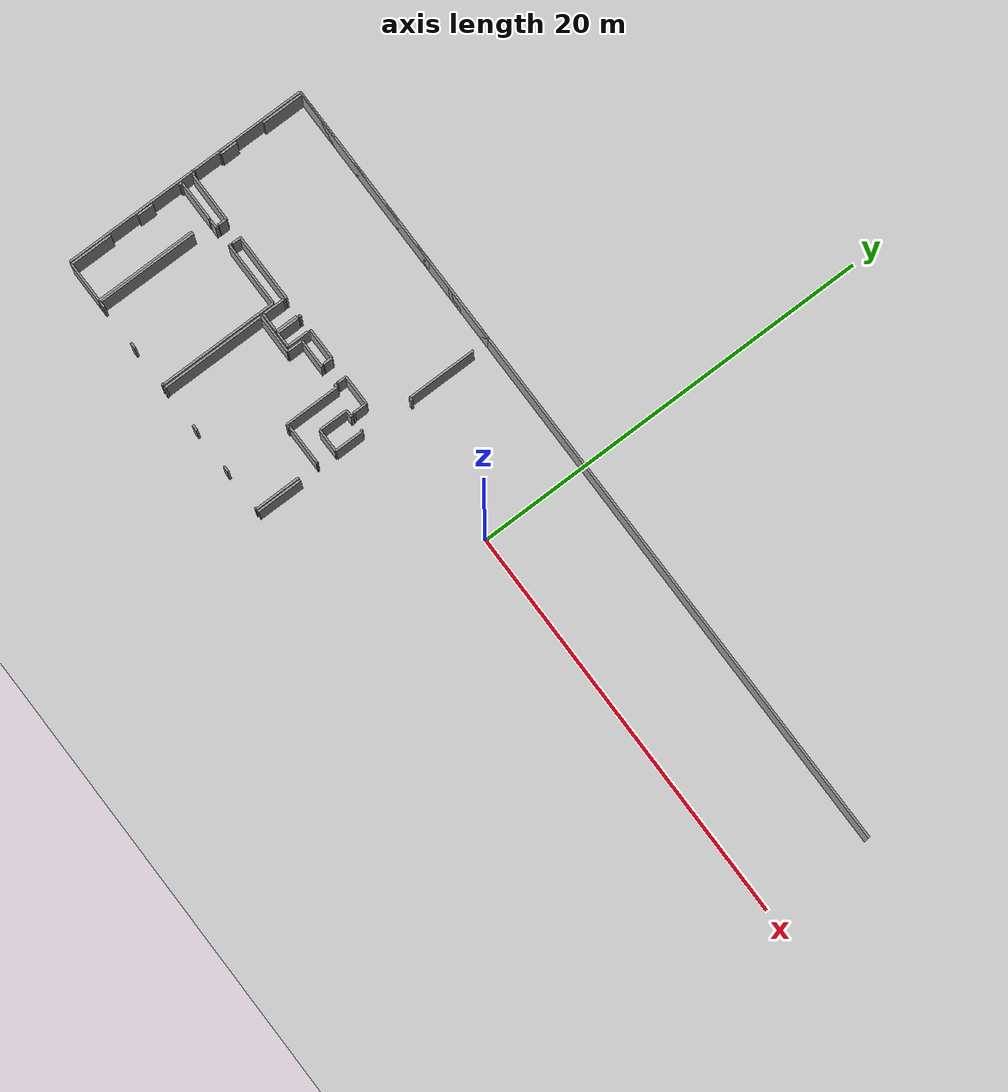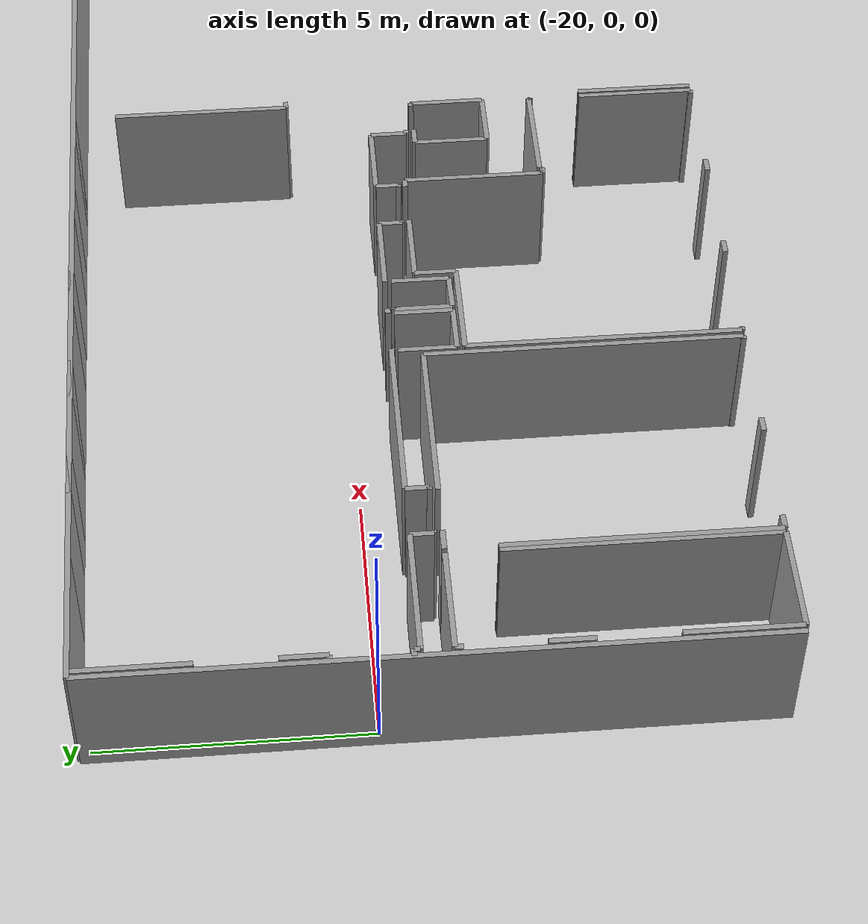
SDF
<sdf version="1.6">
 <world name="default">
  <model name="ground_plane">
   <static>1</static>
   <link name="link">
    <collision name="collision">
     <geometry><plane><normal>0 0 1</normal><size>100 100</size></plane></geometry>
     <surface><friction><ode><mu>100</mu><mu2>50</mu2></ode></friction></surface>
    </collision>
    <visual name="visual">
     <cast_shadows>0</cast_shadows>
     <geometry><plane><normal>0 0 1</normal><size>100 100</size></plane></geometry>
     <material>
      <script><uri>file://media/materials/scripts/gazebo.material</uri><name>Gazebo/Grey</name></script>
     </material>
    </visual>
   </link>
  </model>
  <model name="0510025536_Layout1_PLAN4">
   <static>1</static>
   <link name="Wall_0">
    <collision name="Wall_0_Collision">
     <geometry><box><size>2.08886657941 0.1 2.5</size></box></geometry>
     <pose>1.0444332897 0 1.25 0 0 0</pose>
    </collision>
    <visual name="Wall_0_Visual">
     <pose>1.0444332897 0 1.25 0 0 0</pose>
     <geometry><box><size>2.08886657941 0.1 2.5</size></box></geometry>
     <material>
      <script><uri>file://media/materials/scripts/gazebo.material</uri><name>Gazebo/Grey</name></script>
      <ambient>1 1 1 1</ambient>
     </material>
    </visual>
    <pose>0.12618978028 -12.3596154579 0 0 0 1.57079632679</pose>
   </link>
   <link name="Wall_1">
    <collision name="Wall_1_Collision">
     <geometry><box><size>0.816294112414 0.1 2.5</size></box></geometry>
     <pose>0.408147056207 0 1.25 0 0 0</pose>
    </collision>
    <visual name="Wall_1_Visual">
     <pose>0.408147056207 0 1.25 0 0 0</pose>
     <geometry><box><size>0.816294112414 0.1 2.5</size></box></geometry>
     <material>
      <script><uri>file://media/materials/scripts/gazebo.material</uri><name>Gazebo/Grey</name></script>
      <ambient>1 1 1 1</ambient>
     </material>
    </visual>
    <pose>0.12618978028 -8.83030460917 0 0 0 1.57079632679</pose>
   </link>
   <link name="Wall_2">
    <collision name="Wall_2_Collision">
     <geometry><box><size>0.14887344169 0.1 2.5</size></box></geometry>
     <pose>0.0744367208448 0 1.25 0 0 0</pose>
    </collision>
    <visual name="Wall_2_Visual">
     <pose>0.0744367208448 0 1.25 0 0 0</pose>
     <geometry><box><size>0.14887344169 0.1 2.5</size></box></geometry>
     <material>
      <script><uri>file://media/materials/scripts/gazebo.material</uri><name>Gazebo/Grey</name></script>
      <ambient>1 1 1 1</ambient>
     </material>
    </visual>
    <pose>0.12618978028 -6.59396246076 0 0 0 1.57079632679</pose>
   </link>
   <link name="Wall_3">
    <collision name="Wall_3_Collision">
     <geometry><box><size>1.98275533416 0.1 2.5</size></box></geometry>
     <pose>0.991377667078 0 1.25 0 0 0</pose>
    </collision>
    <visual name="Wall_3_Visual">
     <pose>0.991377667078 0 1.25 0 0 0</pose>
     <geometry><box><size>1.98275533416 0.1 2.5</size></box></geometry>
     <material>
      <script><uri>file://media/materials/scripts/gazebo.material</uri><name>Gazebo/Grey</name></script>
      <ambient>1 1 1 1</ambient>
     </material>
    </visual>
    <pose>0.12618978028 -6.44508901907 0 0 0 0.0</pose>
   </link>
   <link name="Wall_4">
    <collision name="Wall_4_Collision">
     <geometry><box><size>4.96575211905 0.1 2.5</size></box></geometry>
     <pose>2.48287605952 0 1.25 0 0 0</pose>
    </collision>
    <visual name="Wall_4_Visual">
     <pose>2.48287605952 0 1.25 0 0 0</pose>
     <geometry><box><size>4.96575211905 0.1 2.5</size></box></geometry>
     <material>
      <script><uri>file://media/materials/scripts/gazebo.material</uri><name>Gazebo/Grey</name></script>
      <ambient>1 1 1 1</ambient>
     </material>
    </visual>
    <pose>2.10894511443 -7.39113113317 0 0 0 -1.57079632679</pose>
   </link>
   <link name="Wall_5">
    <collision name="Wall_5_Collision">
     <geometry><box><size>1.98275721662 0.1 2.5</size></box></geometry>
     <pose>0.991378608311 0 1.25 0 0 0</pose>
    </collision>
    <visual name="Wall_5_Visual">
     <pose>0.991378608311 0 1.25 0 0 0</pose>
     <geometry><box><size>1.98275721662 0.1 2.5</size></box></geometry>
     <material>
      <script><uri>file://media/materials/scripts/gazebo.material</uri><name>Gazebo/Grey</name></script>
      <ambient>1 1 1 1</ambient>
     </material>
    </visual>
    <pose>2.10894511443 -12.3568832522 0 0 0 -3.14021467016</pose>
   </link>
   <link name="Wall_6">
    <collision name="Wall_6_Collision">
     <geometry><box><size>0.240052865004 0.1 2.5</size></box></geometry>
     <pose>0.120026432502 0 1.25 0 0 0</pose>
    </collision>
    <visual name="Wall_6_Visual">
     <pose>0.120026432502 0 1.25 0 0 0</pose>
     <geometry><box><size>0.240052865004 0.1 2.5</size></box></geometry>
     <material>
      <script><uri>file://media/materials/scripts/gazebo.material</uri><name>Gazebo/Grey</name></script>
      <ambient>1 1 1 1</ambient>
     </material>
    </visual>
    <pose>2.23449949804 -12.3572644902 0 0 0 0.0</pose>
   </link>
   <link name="Wall_7">
    <collision name="Wall_7_Collision">
     <geometry><box><size>0.289041948889 0.1 2.5</size></box></geometry>
     <pose>0.144520974444 0 1.25 0 0 0</pose>
    </collision>
    <visual name="Wall_7_Visual">
     <pose>0.144520974444 0 1.25 0 0 0</pose>
     <geometry><box><size>0.289041948889 0.1 2.5</size></box></geometry>
     <material>
      <script><uri>file://media/materials/scripts/gazebo.material</uri><name>Gazebo/Grey</name></script>
      <ambient>1 1 1 1</ambient>
     </material>
    </visual>
    <pose>4.41384656441 -12.3572644902 0 0 0 0.0</pose>
   </link>
   <link name="Wall_8">
    <collision name="Wall_8_Collision">
     <geometry><box><size>0.0716727452949 0.1 2.5</size></box></geometry>
     <pose>0.0358363726474 0 1.25 0 0 0</pose>
    </collision>
    <visual name="Wall_8_Visual">
     <pose>0.0358363726474 0 1.25 0 0 0</pose>
     <geometry><box><size>0.0716727452949 0.1 2.5</size></box></geometry>
     <material>
      <script><uri>file://media/materials/scripts/gazebo.material</uri><name>Gazebo/Grey</name></script>
      <ambient>1 1 1 1</ambient>
     </material>
    </visual>
    <pose>6.63290592317 -12.3572644902 0 0 0 0.0</pose>
   </link>
   <link name="Wall_9">
    <collision name="Wall_9_Collision">
     <geometry><box><size>5.91211193148 0.1 2.5</size></box></geometry>
     <pose>2.95605596574 0 1.25 0 0 0</pose>
    </collision>
    <visual name="Wall_9_Visual">
     <pose>2.95605596574 0 1.25 0 0 0</pose>
     <geometry><box><size>5.91211193148 0.1 2.5</size></box></geometry>
     <material>
      <script><uri>file://media/materials/scripts/gazebo.material</uri><name>Gazebo/Grey</name></script>
      <ambient>1 1 1 1</ambient>
     </material>
    </visual>
    <pose>6.70457866846 -12.3572644902 0 0 0 1.57079632679</pose>
   </link>
   <link name="Wall_10">
    <collision name="Wall_10_Collision">
     <geometry><box><size>3.19356724403 0.1 2.5</size></box></geometry>
     <pose>1.59678362202 0 1.25 0 0 0</pose>
    </collision>
    <visual name="Wall_10_Visual">
     <pose>1.59678362202 0 1.25 0 0 0</pose>
     <geometry><box><size>3.19356724403 0.1 2.5</size></box></geometry>
     <material>
      <script><uri>file://media/materials/scripts/gazebo.material</uri><name>Gazebo/Grey</name></script>
      <ambient>1 1 1 1</ambient>
     </material>
    </visual>
    <pose>6.70457866846 -6.44515255874 0 0 0 3.14159265359</pose>
   </link>
   <link name="Wall_11">
    <collision name="Wall_11_Collision">
     <geometry><box><size>0.405637239329 0.1 2.5</size></box></geometry>
     <pose>0.202818619664 0 1.25 0 0 0</pose>
    </collision>
    <visual name="Wall_11_Visual">
     <pose>0.202818619664 0 1.25 0 0 0</pose>
     <geometry><box><size>0.405637239329 0.1 2.5</size></box></geometry>
     <material>
      <script><uri>file://media/materials/scripts/gazebo.material</uri><name>Gazebo/Grey</name></script>
      <ambient>1 1 1 1</ambient>
     </material>
    </visual>
    <pose>2.60233063502 -6.44515255874 0 0 0 3.14159265359</pose>
   </link>
   <link name="Wall_12">
    <collision name="Wall_12_Collision">
     <geometry><box><size>4.97426643454 0.1 2.5</size></box></geometry>
     <pose>2.48713321727 0 1.25 0 0 0</pose>
    </collision>
    <visual name="Wall_12_Visual">
     <pose>2.48713321727 0 1.25 0 0 0</pose>
     <geometry><box><size>4.97426643454 0.1 2.5</size></box></geometry>
     <material>
      <script><uri>file://media/materials/scripts/gazebo.material</uri><name>Gazebo/Grey</name></script>
      <ambient>1 1 1 1</ambient>
     </material>
    </visual>
    <pose>2.19669339569 -7.38433238871 0 0 0 -1.57079632679</pose>
   </link>
   <link name="Wall_13">
    <collision name="Wall_13_Collision">
     <geometry><box><size>0.0378296420746 0.1 2.5</size></box></geometry>
     <pose>0.0189148210373 0 1.25 0 0 0</pose>
    </collision>
    <visual name="Wall_13_Visual">
     <pose>0.0189148210373 0 1.25 0 0 0</pose>
     <geometry><box><size>0.0378296420746 0.1 2.5</size></box></geometry>
     <material>
      <script><uri>file://media/materials/scripts/gazebo.material</uri><name>Gazebo/Grey</name></script>
      <ambient>1 1 1 1</ambient>
     </material>
    </visual>
    <pose>2.19669339569 -12.3585988232 0 0 0 0.0352794735935</pose>
   </link>
   <link name="Wall_14">
    <collision name="Wall_14_Collision">
     <geometry><box><size>1.09078547737 0.1 2.5</size></box></geometry>
     <pose>0.545392738687 0 1.25 0 0 0</pose>
    </collision>
    <visual name="Wall_14_Visual">
     <pose>0.545392738687 0 1.25 0 0 0</pose>
     <geometry><box><size>1.09078547737 0.1 2.5</size></box></geometry>
     <material>
      <script><uri>file://media/materials/scripts/gazebo.material</uri><name>Gazebo/Grey</name></script>
      <ambient>1 1 1 1</ambient>
     </material>
    </visual>
    <pose>6.84411177898 -7.07946906254 0 0 0 1.57079632679</pose>
   </link>
   <link name="Wall_15">
    <collision name="Wall_15_Collision">
     <geometry><box><size>0.0507046549161 0.1 2.5</size></box></geometry>
     <pose>0.025352327458 0 1.25 0 0 0</pose>
    </collision>
    <visual name="Wall_15_Visual">
     <pose>0.025352327458 0 1.25 0 0 0</pose>
     <geometry><box><size>0.0507046549161 0.1 2.5</size></box></geometry>
     <material>
      <script><uri>file://media/materials/scripts/gazebo.material</uri><name>Gazebo/Grey</name></script>
      <ambient>1 1 1 1</ambient>
     </material>
    </visual>
    <pose>6.84411177898 -5.98868358516 0 0 0 0.0</pose>
   </link>
   <link name="Wall_16">
    <collision name="Wall_16_Collision">
     <geometry><box><size>1.08868866834 0.1 2.5</size></box></geometry>
     <pose>0.544344334168 0 1.25 0 0 0</pose>
    </collision>
    <visual name="Wall_16_Visual">
     <pose>0.544344334168 0 1.25 0 0 0</pose>
     <geometry><box><size>1.08868866834 0.1 2.5</size></box></geometry>
     <material>
      <script><uri>file://media/materials/scripts/gazebo.material</uri><name>Gazebo/Grey</name></script>
      <ambient>1 1 1 1</ambient>
     </material>
    </visual>
    <pose>7.76912226303 -5.98868358516 0 0 0 -1.57079632679</pose>
   </link>
   <link name="Wall_17">
    <collision name="Wall_17_Collision">
     <geometry><box><size>0.92501286056 0.1 2.5</size></box></geometry>
     <pose>0.46250643028 0 1.25 0 0 0</pose>
    </collision>
    <visual name="Wall_17_Visual">
     <pose>0.46250643028 0 1.25 0 0 0</pose>
     <geometry><box><size>0.92501286056 0.1 2.5</size></box></geometry>
     <material>
      <script><uri>file://media/materials/scripts/gazebo.material</uri><name>Gazebo/Grey</name></script>
      <ambient>1 1 1 1</ambient>
     </material>
    </visual>
    <pose>7.76912226303 -7.0773722535 0 0 0 -3.13932586258</pose>
   </link>
   <link name="Wall_18">
    <collision name="Wall_18_Collision">
     <geometry><box><size>1.088752208 0.1 2.5</size></box></geometry>
     <pose>0.544376104002 0 1.25 0 0 0</pose>
    </collision>
    <visual name="Wall_18_Visual">
     <pose>0.544376104002 0 1.25 0 0 0</pose>
     <geometry><box><size>1.088752208 0.1 2.5</size></box></geometry>
     <material>
      <script><uri>file://media/materials/scripts/gazebo.material</uri><name>Gazebo/Grey</name></script>
      <ambient>1 1 1 1</ambient>
     </material>
    </visual>
    <pose>7.86894308117 -7.07997737988 0 0 0 1.57079632679</pose>
   </link>
   <link name="Wall_19">
    <collision name="Wall_19_Collision">
     <geometry><box><size>0.0371071660037 0.1 2.5</size></box></geometry>
     <pose>0.0185535830019 0 1.25 0 0 0</pose>
    </collision>
    <visual name="Wall_19_Visual">
     <pose>0.0185535830019 0 1.25 0 0 0</pose>
     <geometry><box><size>0.0371071660037 0.1 2.5</size></box></geometry>
     <material>
      <script><uri>file://media/materials/scripts/gazebo.material</uri><name>Gazebo/Grey</name></script>
      <ambient>1 1 1 1</ambient>
     </material>
    </visual>
    <pose>7.86894308117 -5.99122517187 0 0 0 0.0</pose>
   </link>
   <link name="Wall_20">
    <collision name="Wall_20_Collision">
     <geometry><box><size>1.07985665451 0.1 2.5</size></box></geometry>
     <pose>0.539928327255 0 1.25 0 0 0</pose>
    </collision>
    <visual name="Wall_20_Visual">
     <pose>0.539928327255 0 1.25 0 0 0</pose>
     <geometry><box><size>1.07985665451 0.1 2.5</size></box></geometry>
     <material>
      <script><uri>file://media/materials/scripts/gazebo.material</uri><name>Gazebo/Grey</name></script>
      <ambient>1 1 1 1</ambient>
     </material>
    </visual>
    <pose>8.59037246953 -5.99122517187 0 0 0 -1.57079632679</pose>
   </link>
   <link name="Wall_21">
    <collision name="Wall_21_Collision">
     <geometry><box><size>0.721484229399 0.1 2.5</size></box></geometry>
     <pose>0.3607421147 0 1.25 0 0 0</pose>
    </collision>
    <visual name="Wall_21_Visual">
     <pose>0.3607421147 0 1.25 0 0 0</pose>
     <geometry><box><size>0.721484229399 0.1 2.5</size></box></geometry>
     <material>
      <script><uri>file://media/materials/scripts/gazebo.material</uri><name>Gazebo/Grey</name></script>
      <ambient>1 1 1 1</ambient>
     </material>
    </visual>
    <pose>8.59037246953 -7.07108182638 0 0 0 -3.12926282221</pose>
   </link>
   <link name="Wall_22">
    <collision name="Wall_22_Collision">
     <geometry><box><size>5.14398088727 0.1 2.5</size></box></geometry>
     <pose>2.57199044363 0 1.25 0 0 0</pose>
    </collision>
    <visual name="Wall_22_Visual">
     <pose>2.57199044363 0 1.25 0 0 0</pose>
     <geometry><box><size>5.14398088727 0.1 2.5</size></box></geometry>
     <material>
      <script><uri>file://media/materials/scripts/gazebo.material</uri><name>Gazebo/Grey</name></script>
      <ambient>1 1 1 1</ambient>
     </material>
    </visual>
    <pose>6.85478644318 -12.3631101397 0 0 0 1.57079632679</pose>
   </link>
   <link name="Wall_23">
    <collision name="Wall_23_Collision">
     <geometry><box><size>1.91203568388 0.1 2.5</size></box></geometry>
     <pose>0.956017841939 0 1.25 0 0 0</pose>
    </collision>
    <visual name="Wall_23_Visual">
     <pose>0.956017841939 0 1.25 0 0 0</pose>
     <geometry><box><size>1.91203568388 0.1 2.5</size></box></geometry>
     <material>
      <script><uri>file://media/materials/scripts/gazebo.material</uri><name>Gazebo/Grey</name></script>
      <ambient>1 1 1 1</ambient>
     </material>
    </visual>
    <pose>6.85478644318 -7.21912925239 0 0 0 0.0</pose>
   </link>
   <link name="Wall_24">
    <collision name="Wall_24_Collision">
     <geometry><box><size>0.774993328335 0.1 2.5</size></box></geometry>
     <pose>0.387496664167 0 1.25 0 0 0</pose>
    </collision>
    <visual name="Wall_24_Visual">
     <pose>0.387496664167 0 1.25 0 0 0</pose>
     <geometry><box><size>0.774993328335 0.1 2.5</size></box></geometry>
     <material>
      <script><uri>file://media/materials/scripts/gazebo.material</uri><name>Gazebo/Grey</name></script>
      <ambient>1 1 1 1</ambient>
     </material>
    </visual>
    <pose>8.76682212705 -7.21912925239 0 0 0 1.57079632679</pose>
   </link>
   <link name="Wall_25">
    <collision name="Wall_25_Collision">
     <geometry><box><size>1.41445654522 0.1 2.5</size></box></geometry>
     <pose>0.707228272611 0 1.25 0 0 0</pose>
    </collision>
    <visual name="Wall_25_Visual">
     <pose>0.707228272611 0 1.25 0 0 0</pose>
     <geometry><box><size>1.41445654522 0.1 2.5</size></box></geometry>
     <material>
      <script><uri>file://media/materials/scripts/gazebo.material</uri><name>Gazebo/Grey</name></script>
      <ambient>1 1 1 1</ambient>
     </material>
    </visual>
    <pose>8.76682212705 -6.44413592406 0 0 0 0.0</pose>
   </link>
   <link name="Wall_26">
    <collision name="Wall_26_Collision">
     <geometry><box><size>0.180516196261 0.1 2.5</size></box></geometry>
     <pose>0.0902580981307 0 1.25 0 0 0</pose>
    </collision>
    <visual name="Wall_26_Visual">
     <pose>0.0902580981307 0 1.25 0 0 0</pose>
     <geometry><box><size>0.180516196261 0.1 2.5</size></box></geometry>
     <material>
      <script><uri>file://media/materials/scripts/gazebo.material</uri><name>Gazebo/Grey</name></script>
      <ambient>1 1 1 1</ambient>
     </material>
    </visual>
    <pose>11.0957415715 -6.44413592406 0 0 0 0.0</pose>
   </link>
   <link name="Wall_27">
    <collision name="Wall_27_Collision">
     <geometry><box><size>2.70348578618 0.1 2.5</size></box></geometry>
     <pose>1.35174289309 0 1.25 0 0 0</pose>
    </collision>
    <visual name="Wall_27_Visual">
     <pose>1.35174289309 0 1.25 0 0 0</pose>
     <geometry><box><size>2.70348578618 0.1 2.5</size></box></geometry>
     <material>
      <script><uri>file://media/materials/scripts/gazebo.material</uri><name>Gazebo/Grey</name></script>
      <ambient>1 1 1 1</ambient>
     </material>
    </visual>
    <pose>11.2762577677 -6.44413592406 0 0 0 -1.57079632679</pose>
   </link>
   <link name="Wall_28">
    <collision name="Wall_28_Collision">
     <geometry><box><size>0.140930983213 0.1 2.5</size></box></geometry>
     <pose>0.0704654916064 0 1.25 0 0 0</pose>
    </collision>
    <visual name="Wall_28_Visual">
     <pose>0.0704654916064 0 1.25 0 0 0</pose>
     <geometry><box><size>0.140930983213 0.1 2.5</size></box></geometry>
     <material>
      <script><uri>file://media/materials/scripts/gazebo.material</uri><name>Gazebo/Grey</name></script>
      <ambient>1 1 1 1</ambient>
     </material>
    </visual>
    <pose>11.2762577677 -9.14762171023 0 0 0 0.0</pose>
   </link>
   <link name="Wall_29">
    <collision name="Wall_29_Collision">
     <geometry><box><size>0.0515942102655 0.1 2.5</size></box></geometry>
     <pose>0.0257971051327 0 1.25 0 0 0</pose>
    </collision>
    <visual name="Wall_29_Visual">
     <pose>0.0257971051327 0 1.25 0 0 0</pose>
     <geometry><box><size>0.0515942102655 0.1 2.5</size></box></geometry>
     <material>
      <script><uri>file://media/materials/scripts/gazebo.material</uri><name>Gazebo/Grey</name></script>
      <ambient>1 1 1 1</ambient>
     </material>
    </visual>
    <pose>11.4171887509 -9.14762171023 0 0 0 1.57079632679</pose>
   </link>
   <link name="Wall_30">
    <collision name="Wall_30_Collision">
     <geometry><box><size>1.99203212566 0.1 2.5</size></box></geometry>
     <pose>0.996016062828 0 1.25 0 0 0</pose>
    </collision>
    <visual name="Wall_30_Visual">
     <pose>0.996016062828 0 1.25 0 0 0</pose>
     <geometry><box><size>1.99203212566 0.1 2.5</size></box></geometry>
     <material>
      <script><uri>file://media/materials/scripts/gazebo.material</uri><name>Gazebo/Grey</name></script>
      <ambient>1 1 1 1</ambient>
     </material>
    </visual>
    <pose>11.4171887509 -9.09602749997 0 0 0 0.0</pose>
   </link>
   <link name="Wall_31">
    <collision name="Wall_31_Collision">
     <geometry><box><size>0.0273220571603 0.1 2.5</size></box></geometry>
     <pose>0.0136610285801 0 1.25 0 0 0</pose>
    </collision>
    <visual name="Wall_31_Visual">
     <pose>0.0136610285801 0 1.25 0 0 0</pose>
     <geometry><box><size>0.0273220571603 0.1 2.5</size></box></geometry>
     <material>
      <script><uri>file://media/materials/scripts/gazebo.material</uri><name>Gazebo/Grey</name></script>
      <ambient>1 1 1 1</ambient>
     </material>
    </visual>
    <pose>13.4092208766 -9.09602749997 0 0 0 -1.57079632679</pose>
   </link>
   <link name="Wall_32">
    <collision name="Wall_32_Collision">
     <geometry><box><size>0.0153765996111 0.1 2.5</size></box></geometry>
     <pose>0.00768829980557 0 1.25 0 0 0</pose>
    </collision>
    <visual name="Wall_32_Visual">
     <pose>0.00768829980557 0 1.25 0 0 0</pose>
     <geometry><box><size>0.0153765996111 0.1 2.5</size></box></geometry>
     <material>
      <script><uri>file://media/materials/scripts/gazebo.material</uri><name>Gazebo/Grey</name></script>
      <ambient>1 1 1 1</ambient>
     </material>
    </visual>
    <pose>13.4092208766 -9.12334955713 0 0 0 0.0</pose>
   </link>
   <link name="Wall_33">
    <collision name="Wall_33_Collision">
     <geometry><box><size>2.25146458934 0.1 2.5</size></box></geometry>
     <pose>1.12573229467 0 1.25 0 0 0</pose>
    </collision>
    <visual name="Wall_33_Visual">
     <pose>1.12573229467 0 1.25 0 0 0</pose>
     <geometry><box><size>2.25146458934 0.1 2.5</size></box></geometry>
     <material>
      <script><uri>file://media/materials/scripts/gazebo.material</uri><name>Gazebo/Grey</name></script>
      <ambient>1 1 1 1</ambient>
     </material>
    </visual>
    <pose>13.4245974762 -10.112471566 0 0 0 -1.57079632679</pose>
   </link>
   <link name="Wall_34">
    <collision name="Wall_34_Collision">
     <geometry><box><size>0.0913700423174 0.1 2.5</size></box></geometry>
     <pose>0.0456850211587 0 1.25 0 0 0</pose>
    </collision>
    <visual name="Wall_34_Visual">
     <pose>0.0456850211587 0 1.25 0 0 0</pose>
     <geometry><box><size>0.0913700423174 0.1 2.5</size></box></geometry>
     <material>
      <script><uri>file://media/materials/scripts/gazebo.material</uri><name>Gazebo/Grey</name></script>
      <ambient>1 1 1 1</ambient>
     </material>
    </visual>
    <pose>13.4245974762 -12.3639361553 0 0 0 3.14159265359</pose>
   </link>
   <link name="Wall_35">
    <collision name="Wall_35_Collision">
     <geometry><box><size>0.298636438729 0.1 2.5</size></box></geometry>
     <pose>0.149318219364 0 1.25 0 0 0</pose>
    </collision>
    <visual name="Wall_35_Visual">
     <pose>0.149318219364 0 1.25 0 0 0</pose>
     <geometry><box><size>0.298636438729 0.1 2.5</size></box></geometry>
     <material>
      <script><uri>file://media/materials/scripts/gazebo.material</uri><name>Gazebo/Grey</name></script>
      <ambient>1 1 1 1</ambient>
     </material>
    </visual>
    <pose>11.4007955166 -12.3639361553 0 0 0 3.14159265359</pose>
   </link>
   <link name="Wall_36">
    <collision name="Wall_36_Collision">
     <geometry><box><size>0.293743884307 0.1 2.5</size></box></geometry>
     <pose>0.146871942153 0 1.25 0 0 0</pose>
    </collision>
    <visual name="Wall_36_Visual">
     <pose>0.146871942153 0 1.25 0 0 0</pose>
     <geometry><box><size>0.293743884307 0.1 2.5</size></box></geometry>
     <material>
      <script><uri>file://media/materials/scripts/gazebo.material</uri><name>Gazebo/Grey</name></script>
      <ambient>1 1 1 1</ambient>
     </material>
    </visual>
    <pose>9.16273779721 -12.3639361553 0 0 0 3.14159265359</pose>
   </link>
   <link name="Wall_37">
    <collision name="Wall_37_Collision">
     <geometry><box><size>0.0819703334697 0.1 2.5</size></box></geometry>
     <pose>0.0409851667349 0 1.25 0 0 0</pose>
    </collision>
    <visual name="Wall_37_Visual">
     <pose>0.0409851667349 0 1.25 0 0 0</pose>
     <geometry><box><size>0.0819703334697 0.1 2.5</size></box></geometry>
     <material>
      <script><uri>file://media/materials/scripts/gazebo.material</uri><name>Gazebo/Grey</name></script>
      <ambient>1 1 1 1</ambient>
     </material>
    </visual>
    <pose>6.93675261466 -12.3639361553 0 0 0 3.13151547533</pose>
   </link>
   <link name="Wall_38">
    <collision name="Wall_38_Collision">
     <geometry><box><size>1.4261478441 0.1 2.5</size></box></geometry>
     <pose>0.71307392205 0 1.25 0 0 0</pose>
    </collision>
    <visual name="Wall_38_Visual">
     <pose>0.71307392205 0 1.25 0 0 0</pose>
     <geometry><box><size>1.4261478441 0.1 2.5</size></box></geometry>
     <material>
      <script><uri>file://media/materials/scripts/gazebo.material</uri><name>Gazebo/Grey</name></script>
      <ambient>1 1 1 1</ambient>
     </material>
    </visual>
    <pose>12.3259966197 -8.15316236927 0 0 0 1.57079632679</pose>
   </link>
   <link name="Wall_39">
    <collision name="Wall_39_Collision">
     <geometry><box><size>0.367640517975 0.1 2.5</size></box></geometry>
     <pose>0.183820258988 0 1.25 0 0 0</pose>
    </collision>
    <visual name="Wall_39_Visual">
     <pose>0.183820258988 0 1.25 0 0 0</pose>
     <geometry><box><size>0.367640517975 0.1 2.5</size></box></geometry>
     <material>
      <script><uri>file://media/materials/scripts/gazebo.material</uri><name>Gazebo/Grey</name></script>
      <ambient>1 1 1 1</ambient>
     </material>
    </visual>
    <pose>12.3259966197 -6.72701452517 0 0 0 0.0</pose>
   </link>
   <link name="Wall_40">
    <collision name="Wall_40_Collision">
     <geometry><box><size>0.0855243928785 0.1 2.5</size></box></geometry>
     <pose>0.0427621964392 0 1.25 0 0 0</pose>
    </collision>
    <visual name="Wall_40_Visual">
     <pose>0.0427621964392 0 1.25 0 0 0</pose>
     <geometry><box><size>0.0855243928785 0.1 2.5</size></box></geometry>
     <material>
      <script><uri>file://media/materials/scripts/gazebo.material</uri><name>Gazebo/Grey</name></script>
      <ambient>1 1 1 1</ambient>
     </material>
    </visual>
    <pose>13.3676023942 -6.72701452517 0 0 0 0.0</pose>
   </link>
   <link name="Wall_41">
    <collision name="Wall_41_Collision">
     <geometry><box><size>1.42494059041 0.1 2.5</size></box></geometry>
     <pose>0.712470295205 0 1.25 0 0 0</pose>
    </collision>
    <visual name="Wall_41_Visual">
     <pose>0.712470295205 0 1.25 0 0 0</pose>
     <geometry><box><size>1.42494059041 0.1 2.5</size></box></geometry>
     <material>
      <script><uri>file://media/materials/scripts/gazebo.material</uri><name>Gazebo/Grey</name></script>
      <ambient>1 1 1 1</ambient>
     </material>
    </visual>
    <pose>13.4531267871 -6.72701452517 0 0 0 -1.57079632679</pose>
   </link>
   <link name="Wall_42">
    <collision name="Wall_42_Collision">
     <geometry><box><size>1.1271308139 0.1 2.5</size></box></geometry>
     <pose>0.56356540695 0 1.25 0 0 0</pose>
    </collision>
    <visual name="Wall_42_Visual">
     <pose>0.56356540695 0 1.25 0 0 0</pose>
     <geometry><box><size>1.1271308139 0.1 2.5</size></box></geometry>
     <material>
      <script><uri>file://media/materials/scripts/gazebo.material</uri><name>Gazebo/Grey</name></script>
      <ambient>1 1 1 1</ambient>
     </material>
    </visual>
    <pose>13.4531267871 -8.15195511558 0 0 0 -3.14052156769</pose>
   </link>
   <link name="Wall_53">
    <collision name="Wall_53_Collision">
     <geometry><box><size>0.109288228641 0.1 2.5</size></box></geometry>
     <pose>0.0546441143206 0 1.25 0 0 0</pose>
    </collision>
    <visual name="Wall_53_Visual">
     <pose>0.0546441143206 0 1.25 0 0 0</pose>
     <geometry><box><size>0.109288228641 0.1 2.5</size></box></geometry>
     <material>
      <script><uri>file://media/materials/scripts/gazebo.material</uri><name>Gazebo/Grey</name></script>
      <ambient>1 1 1 1</ambient>
     </material>
    </visual>
    <pose>0.131781271048 -5.86935608901 0 0 0 1.57079632679</pose>
   </link>
   <link name="Wall_54">
    <collision name="Wall_54_Collision">
     <geometry><box><size>0.131781271048 0.1 2.5</size></box></geometry>
     <pose>0.0658906355238 0 1.25 0 0 0</pose>
    </collision>
    <visual name="Wall_54_Visual">
     <pose>0.0658906355238 0 1.25 0 0 0</pose>
     <geometry><box><size>0.131781271048 0.1 2.5</size></box></geometry>
     <material>
      <script><uri>file://media/materials/scripts/gazebo.material</uri><name>Gazebo/Grey</name></script>
      <ambient>1 1 1 1</ambient>
     </material>
    </visual>
    <pose>0.131781271048 -5.76006786037 0 0 0 3.14159265359</pose>
   </link>
   <link name="Wall_55">
    <collision name="Wall_55_Collision">
     <geometry><box><size>0.12822304965 0.1 2.5</size></box></geometry>
     <pose>0.0641115248249 0 1.25 0 0 0</pose>
    </collision>
    <visual name="Wall_55_Visual">
     <pose>0.0641115248249 0 1.25 0 0 0</pose>
     <geometry><box><size>0.12822304965 0.1 2.5</size></box></geometry>
     <material>
      <script><uri>file://media/materials/scripts/gazebo.material</uri><name>Gazebo/Grey</name></script>
      <ambient>1 1 1 1</ambient>
     </material>
    </visual>
    <pose>0.0 -4.35393501163 0 0 0 0.0</pose>
   </link>
   <link name="Wall_56">
    <collision name="Wall_56_Collision">
     <geometry><box><size>0.846856692633 0.1 2.5</size></box></geometry>
     <pose>0.423428346317 0 1.25 0 0 0</pose>
    </collision>
    <visual name="Wall_56_Visual">
     <pose>0.423428346317 0 1.25 0 0 0</pose>
     <geometry><box><size>0.846856692633 0.1 2.5</size></box></geometry>
     <material>
      <script><uri>file://media/materials/scripts/gazebo.material</uri><name>Gazebo/Grey</name></script>
      <ambient>1 1 1 1</ambient>
     </material>
    </visual>
    <pose>0.12822304965 -4.35393501163 0 0 0 1.57079632679</pose>
   </link>
   <link name="Wall_57">
    <collision name="Wall_57_Collision">
     <geometry><box><size>2.09141452008 0.1 2.5</size></box></geometry>
     <pose>1.04570726004 0 1.25 0 0 0</pose>
    </collision>
    <visual name="Wall_57_Visual">
     <pose>1.04570726004 0 1.25 0 0 0</pose>
     <geometry><box><size>2.09141452008 0.1 2.5</size></box></geometry>
     <material>
      <script><uri>file://media/materials/scripts/gazebo.material</uri><name>Gazebo/Grey</name></script>
      <ambient>1 1 1 1</ambient>
     </material>
    </visual>
    <pose>0.12822304965 -2.09141452008 0 0 0 1.57079632679</pose>
   </link>
   <link name="Wall_58">
    <collision name="Wall_58_Collision">
     <geometry><box><size>2.38820195448 0.1 2.5</size></box></geometry>
     <pose>1.19410097724 0 1.25 0 0 0</pose>
    </collision>
    <visual name="Wall_58_Visual">
     <pose>1.19410097724 0 1.25 0 0 0</pose>
     <geometry><box><size>2.38820195448 0.1 2.5</size></box></geometry>
     <material>
      <script><uri>file://media/materials/scripts/gazebo.material</uri><name>Gazebo/Grey</name></script>
      <ambient>1 1 1 1</ambient>
     </material>
    </visual>
    <pose>0.12822304965 -0.0 0 0 0 0.0</pose>
   </link>
   <link name="Wall_59">
    <collision name="Wall_59_Collision">
     <geometry><box><size>0.854290833768 0.1 2.5</size></box></geometry>
     <pose>0.427145416884 0 1.25 0 0 0</pose>
    </collision>
    <visual name="Wall_59_Visual">
     <pose>0.427145416884 0 1.25 0 0 0</pose>
     <geometry><box><size>0.854290833768 0.1 2.5</size></box></geometry>
     <material>
      <script><uri>file://media/materials/scripts/gazebo.material</uri><name>Gazebo/Grey</name></script>
      <ambient>1 1 1 1</ambient>
     </material>
    </visual>
    <pose>3.93933232517 -0.0 0 0 0 0.0</pose>
   </link>
   <link name="Wall_60">
    <collision name="Wall_60_Collision">
     <geometry><box><size>0.862741609587 0.1 2.5</size></box></geometry>
     <pose>0.431370804793 0 1.25 0 0 0</pose>
    </collision>
    <visual name="Wall_60_Visual">
     <pose>0.431370804793 0 1.25 0 0 0</pose>
     <geometry><box><size>0.862741609587 0.1 2.5</size></box></geometry>
     <material>
      <script><uri>file://media/materials/scripts/gazebo.material</uri><name>Gazebo/Grey</name></script>
      <ambient>1 1 1 1</ambient>
     </material>
    </visual>
    <pose>6.1882553278 -0.0 0 0 0 0.0</pose>
   </link>
   <link name="Wall_61">
    <collision name="Wall_61_Collision">
     <geometry><box><size>0.872081940756 0.1 2.5</size></box></geometry>
     <pose>0.436040970378 0 1.25 0 0 0</pose>
    </collision>
    <visual name="Wall_61_Visual">
     <pose>0.436040970378 0 1.25 0 0 0</pose>
     <geometry><box><size>0.872081940756 0.1 2.5</size></box></geometry>
     <material>
      <script><uri>file://media/materials/scripts/gazebo.material</uri><name>Gazebo/Grey</name></script>
      <ambient>1 1 1 1</ambient>
     </material>
    </visual>
    <pose>8.44556556658 -0.0 0 0 0 0.0</pose>
   </link>
   <link name="Wall_62">
    <collision name="Wall_62_Collision">
     <geometry><box><size>0.864774878957 0.1 2.5</size></box></geometry>
     <pose>0.432387439478 0 1.25 0 0 0</pose>
    </collision>
    <visual name="Wall_62_Visual">
     <pose>0.432387439478 0 1.25 0 0 0</pose>
     <geometry><box><size>0.864774878957 0.1 2.5</size></box></geometry>
     <material>
      <script><uri>file://media/materials/scripts/gazebo.material</uri><name>Gazebo/Grey</name></script>
      <ambient>1 1 1 1</ambient>
     </material>
    </visual>
    <pose>10.7163462149 -0.0 0 0 0 0.0</pose>
   </link>
   <link name="Wall_63">
    <collision name="Wall_63_Collision">
     <geometry><box><size>0.549046269586 0.1 2.5</size></box></geometry>
     <pose>0.274523134793 0 1.25 0 0 0</pose>
    </collision>
    <visual name="Wall_63_Visual">
     <pose>0.274523134793 0 1.25 0 0 0</pose>
     <geometry><box><size>0.549046269586 0.1 2.5</size></box></geometry>
     <material>
      <script><uri>file://media/materials/scripts/gazebo.material</uri><name>Gazebo/Grey</name></script>
      <ambient>1 1 1 1</ambient>
     </material>
    </visual>
    <pose>12.9772782148 -0.0 0 0 0 0.0</pose>
   </link>
   <link name="Wall_64">
    <collision name="Wall_64_Collision">
     <geometry><box><size>3.39702761434 0.1 2.5</size></box></geometry>
     <pose>1.69851380717 0 1.25 0 0 0</pose>
    </collision>
    <visual name="Wall_64_Visual">
     <pose>1.69851380717 0 1.25 0 0 0</pose>
     <geometry><box><size>3.39702761434 0.1 2.5</size></box></geometry>
     <material>
      <script><uri>file://media/materials/scripts/gazebo.material</uri><name>Gazebo/Grey</name></script>
      <ambient>1 1 1 1</ambient>
     </material>
    </visual>
    <pose>13.5263244844 -0.832750886378 0 0 0 -1.57079632679</pose>
   </link>
   <link name="Wall_65">
    <collision name="Wall_65_Collision">
     <geometry><box><size>0.159357486879 0.1 2.5</size></box></geometry>
     <pose>0.0796787434395 0 1.25 0 0 0</pose>
    </collision>
    <visual name="Wall_65_Visual">
     <pose>0.0796787434395 0 1.25 0 0 0</pose>
     <geometry><box><size>0.159357486879 0.1 2.5</size></box></geometry>
     <material>
      <script><uri>file://media/materials/scripts/gazebo.material</uri><name>Gazebo/Grey</name></script>
      <ambient>1 1 1 1</ambient>
     </material>
    </visual>
    <pose>13.5263244844 -4.22977850072 0 0 0 0.0</pose>
   </link>
   <link name="Wall_70">
    <collision name="Wall_70_Collision">
     <geometry><box><size>0.0918148199921 0.1 2.5</size></box></geometry>
     <pose>0.0459074099961 0 1.25 0 0 0</pose>
    </collision>
    <visual name="Wall_70_Visual">
     <pose>0.0459074099961 0 1.25 0 0 0</pose>
     <geometry><box><size>0.0918148199921 0.1 2.5</size></box></geometry>
     <material>
      <script><uri>file://media/materials/scripts/gazebo.material</uri><name>Gazebo/Grey</name></script>
      <ambient>1 1 1 1</ambient>
     </material>
    </visual>
    <pose>12.6896976783 -6.57547241743 0 0 0 3.14159265359</pose>
   </link>
   <link name="Wall_71">
    <collision name="Wall_71_Collision">
     <geometry><box><size>0.700461297988 0.1 2.5</size></box></geometry>
     <pose>0.350230648994 0 1.25 0 0 0</pose>
    </collision>
    <visual name="Wall_71_Visual">
     <pose>0.350230648994 0 1.25 0 0 0</pose>
     <geometry><box><size>0.700461297988 0.1 2.5</size></box></geometry>
     <material>
      <script><uri>file://media/materials/scripts/gazebo.material</uri><name>Gazebo/Grey</name></script>
      <ambient>1 1 1 1</ambient>
     </material>
    </visual>
    <pose>12.5978828583 -6.57547241743 0 0 0 1.57079632679</pose>
   </link>
   <link name="Wall_72">
    <collision name="Wall_72_Collision">
     <geometry><box><size>1.44794195016 0.1 2.5</size></box></geometry>
     <pose>0.72397097508 0 1.25 0 0 0</pose>
    </collision>
    <visual name="Wall_72_Visual">
     <pose>0.72397097508 0 1.25 0 0 0</pose>
     <geometry><box><size>1.44794195016 0.1 2.5</size></box></geometry>
     <material>
      <script><uri>file://media/materials/scripts/gazebo.material</uri><name>Gazebo/Grey</name></script>
      <ambient>1 1 1 1</ambient>
     </material>
    </visual>
    <pose>12.5978828583 -5.87501111944 0 0 0 3.14159265359</pose>
   </link>
   <link name="Wall_73">
    <collision name="Wall_73_Collision">
     <geometry><box><size>0.436453978219 0.1 2.5</size></box></geometry>
     <pose>0.218226989109 0 1.25 0 0 0</pose>
    </collision>
    <visual name="Wall_73_Visual">
     <pose>0.218226989109 0 1.25 0 0 0</pose>
     <geometry><box><size>0.436453978219 0.1 2.5</size></box></geometry>
     <material>
      <script><uri>file://media/materials/scripts/gazebo.material</uri><name>Gazebo/Grey</name></script>
      <ambient>1 1 1 1</ambient>
     </material>
    </visual>
    <pose>11.1499409081 -5.87501111944 0 0 0 -1.57079632679</pose>
   </link>
   <link name="Wall_74">
    <collision name="Wall_74_Collision">
     <geometry><box><size>0.0597272877457 0.1 2.5</size></box></geometry>
     <pose>0.0298636438729 0 1.25 0 0 0</pose>
    </collision>
    <visual name="Wall_74_Visual">
     <pose>0.0298636438729 0 1.25 0 0 0</pose>
     <geometry><box><size>0.0597272877457 0.1 2.5</size></box></geometry>
     <material>
      <script><uri>file://media/materials/scripts/gazebo.material</uri><name>Gazebo/Grey</name></script>
      <ambient>1 1 1 1</ambient>
     </material>
    </visual>
    <pose>11.1499409081 -6.31146509766 0 0 0 3.14159265359</pose>
   </link>
   <link name="Wall_75">
    <collision name="Wall_75_Collision">
     <geometry><box><size>0.0433340534496 0.1 2.5</size></box></geometry>
     <pose>0.0216670267248 0 1.25 0 0 0</pose>
    </collision>
    <visual name="Wall_75_Visual">
     <pose>0.0216670267248 0 1.25 0 0 0</pose>
     <geometry><box><size>0.0433340534496 0.1 2.5</size></box></geometry>
     <material>
      <script><uri>file://media/materials/scripts/gazebo.material</uri><name>Gazebo/Grey</name></script>
      <ambient>1 1 1 1</ambient>
     </material>
    </visual>
    <pose>10.1707310874 -6.31146509766 0 0 0 3.14159265359</pose>
   </link>
   <link name="Wall_76">
    <collision name="Wall_76_Collision">
     <geometry><box><size>0.442998564004 0.1 2.5</size></box></geometry>
     <pose>0.221499282002 0 1.25 0 0 0</pose>
    </collision>
    <visual name="Wall_76_Visual">
     <pose>0.221499282002 0 1.25 0 0 0</pose>
     <geometry><box><size>0.442998564004 0.1 2.5</size></box></geometry>
     <material>
      <script><uri>file://media/materials/scripts/gazebo.material</uri><name>Gazebo/Grey</name></script>
      <ambient>1 1 1 1</ambient>
     </material>
    </visual>
    <pose>10.127397034 -6.31146509766 0 0 0 1.57079632679</pose>
   </link>
   <link name="Wall_77">
    <collision name="Wall_77_Collision">
     <geometry><box><size>1.54566595926 0.1 2.5</size></box></geometry>
     <pose>0.772832979629 0 1.25 0 0 0</pose>
    </collision>
    <visual name="Wall_77_Visual">
     <pose>0.772832979629 0 1.25 0 0 0</pose>
     <geometry><box><size>1.54566595926 0.1 2.5</size></box></geometry>
     <material>
      <script><uri>file://media/materials/scripts/gazebo.material</uri><name>Gazebo/Grey</name></script>
      <ambient>1 1 1 1</ambient>
     </material>
    </visual>
    <pose>10.127397034 -5.86846653366 0 0 0 3.14159265359</pose>
   </link>
   <link name="Wall_78">
    <collision name="Wall_78_Collision">
     <geometry><box><size>0.121614924197 0.1 2.5</size></box></geometry>
     <pose>0.0608074620986 0 1.25 0 0 0</pose>
    </collision>
    <visual name="Wall_78_Visual">
     <pose>0.0608074620986 0 1.25 0 0 0</pose>
     <geometry><box><size>0.121614924197 0.1 2.5</size></box></geometry>
     <material>
      <script><uri>file://media/materials/scripts/gazebo.material</uri><name>Gazebo/Grey</name></script>
      <ambient>1 1 1 1</ambient>
     </material>
    </visual>
    <pose>7.89874318537 -5.86846653366 0 0 0 3.14159265359</pose>
   </link>
   <link name="Wall_79">
    <collision name="Wall_79_Collision">
     <geometry><box><size>3.31435615255 0.1 2.5</size></box></geometry>
     <pose>1.65717807627 0 1.25 0 0 0</pose>
    </collision>
    <visual name="Wall_79_Visual">
     <pose>1.65717807627 0 1.25 0 0 0</pose>
     <geometry><box><size>3.31435615255 0.1 2.5</size></box></geometry>
     <material>
      <script><uri>file://media/materials/scripts/gazebo.material</uri><name>Gazebo/Grey</name></script>
      <ambient>1 1 1 1</ambient>
     </material>
    </visual>
    <pose>6.88560318207 -5.86846653366 0 0 0 3.14159265359</pose>
   </link>
   <link name="Wall_80">
    <collision name="Wall_80_Collision">
     <geometry><box><size>0.433658232835 0.1 2.5</size></box></geometry>
     <pose>0.216829116417 0 1.25 0 0 0</pose>
    </collision>
    <visual name="Wall_80_Visual">
     <pose>0.216829116417 0 1.25 0 0 0</pose>
     <geometry><box><size>0.433658232835 0.1 2.5</size></box></geometry>
     <material>
      <script><uri>file://media/materials/scripts/gazebo.material</uri><name>Gazebo/Grey</name></script>
      <ambient>1 1 1 1</ambient>
     </material>
    </visual>
    <pose>3.57124702952 -5.86846653366 0 0 0 -1.57079632679</pose>
   </link>
   <link name="Wall_81">
    <collision name="Wall_81_Collision">
     <geometry><box><size>0.053818098639 0.1 2.5</size></box></geometry>
     <pose>0.0269090493195 0 1.25 0 0 0</pose>
    </collision>
    <visual name="Wall_81_Visual">
     <pose>0.0269090493195 0 1.25 0 0 0</pose>
     <geometry><box><size>0.053818098639 0.1 2.5</size></box></geometry>
     <material>
      <script><uri>file://media/materials/scripts/gazebo.material</uri><name>Gazebo/Grey</name></script>
      <ambient>1 1 1 1</ambient>
     </material>
    </visual>
    <pose>3.57124702952 -6.30212476649 0 0 0 3.14159265359</pose>
   </link>
   <link name="Wall_82">
    <collision name="Wall_82_Collision">
     <geometry><box><size>0.0471464335184 0.1 2.5</size></box></geometry>
     <pose>0.0235732167592 0 1.25 0 0 0</pose>
    </collision>
    <visual name="Wall_82_Visual">
     <pose>0.0235732167592 0 1.25 0 0 0</pose>
     <geometry><box><size>0.0471464335184 0.1 2.5</size></box></geometry>
     <material>
      <script><uri>file://media/materials/scripts/gazebo.material</uri><name>Gazebo/Grey</name></script>
      <ambient>1 1 1 1</ambient>
     </material>
    </visual>
    <pose>2.59947134996 -6.30212476649 0 0 0 3.14159265359</pose>
   </link>
   <link name="Wall_83">
    <collision name="Wall_83_Collision">
     <geometry><box><size>0.426732409043 0.1 2.5</size></box></geometry>
     <pose>0.213366204521 0 1.25 0 0 0</pose>
    </collision>
    <visual name="Wall_83_Visual">
     <pose>0.213366204521 0 1.25 0 0 0</pose>
     <geometry><box><size>0.426732409043 0.1 2.5</size></box></geometry>
     <material>
      <script><uri>file://media/materials/scripts/gazebo.material</uri><name>Gazebo/Grey</name></script>
      <ambient>1 1 1 1</ambient>
     </material>
    </visual>
    <pose>2.55232491645 -6.30212476649 0 0 0 1.57079632679</pose>
   </link>
   <link name="Wall_84">
    <collision name="Wall_84_Collision">
     <geometry><box><size>2.42055117191 0.1 2.5</size></box></geometry>
     <pose>1.21027558595 0 1.25 0 0 0</pose>
    </collision>
    <visual name="Wall_84_Visual">
     <pose>1.21027558595 0 1.25 0 0 0</pose>
     <geometry><box><size>2.42055117191 0.1 2.5</size></box></geometry>
     <material>
      <script><uri>file://media/materials/scripts/gazebo.material</uri><name>Gazebo/Grey</name></script>
      <ambient>1 1 1 1</ambient>
     </material>
    </visual>
    <pose>2.55232491645 -5.87539235745 0 0 0 3.13909889317</pose>
   </link>
   <link name="Wall_105">
    <collision name="Wall_105_Collision">
     <geometry><box><size>2.25203644635 0.1 2.5</size></box></geometry>
     <pose>1.12601822318 0 1.25 0 0 0</pose>
    </collision>
    <visual name="Wall_105_Visual">
     <pose>1.12601822318 0 1.25 0 0 0</pose>
     <geometry><box><size>2.25203644635 0.1 2.5</size></box></geometry>
     <material>
      <script><uri>file://media/materials/scripts/gazebo.material</uri><name>Gazebo/Grey</name></script>
      <ambient>1 1 1 1</ambient>
     </material>
    </visual>
    <pose>13.5544090175 -12.3631736793 0 0 0 1.57079632679</pose>
   </link>
   <link name="Wall_219">
    <collision name="Wall_219_Collision">
     <geometry><box><size>12.3694641064 0.1 2.5</size></box></geometry>
     <pose>6.18473205322 0 1.25 0 0 0</pose>
    </collision>
    <visual name="Wall_219_Visual">
     <pose>6.18473205322 0 1.25 0 0 0</pose>
     <geometry><box><size>12.3694641064 0.1 2.5</size></box></geometry>
     <material>
      <script><uri>file://media/materials/scripts/gazebo.material</uri><name>Gazebo/Grey</name></script>
      <ambient>1 1 1 1</ambient>
     </material>
    </visual>
    <pose>0.0 -12.3694641064 0 0 0 1.57079632679</pose>
   </link>
   <link name="Wall_220">
    <collision name="Wall_220_Collision">
     <geometry><box><size>40.3657978676 0.1 2.5</size></box></geometry>
     <pose>20.1828989338 0 1.25 0 0 0</pose>
    </collision>
    <visual name="Wall_220_Visual">
     <pose>20.1828989338 0 1.25 0 0 0</pose>
     <geometry><box><size>40.3657978676 0.1 2.5</size></box></geometry>
     <material>
      <script><uri>file://media/materials/scripts/gazebo.material</uri><name>Gazebo/Grey</name></script>
      <ambient>1 1 1 1</ambient>
     </material>
    </visual>
   </link>
   <pose>-20.15 5.16946410644 0 0 0 0</pose>
  </model>
 </world>
</sdf>
